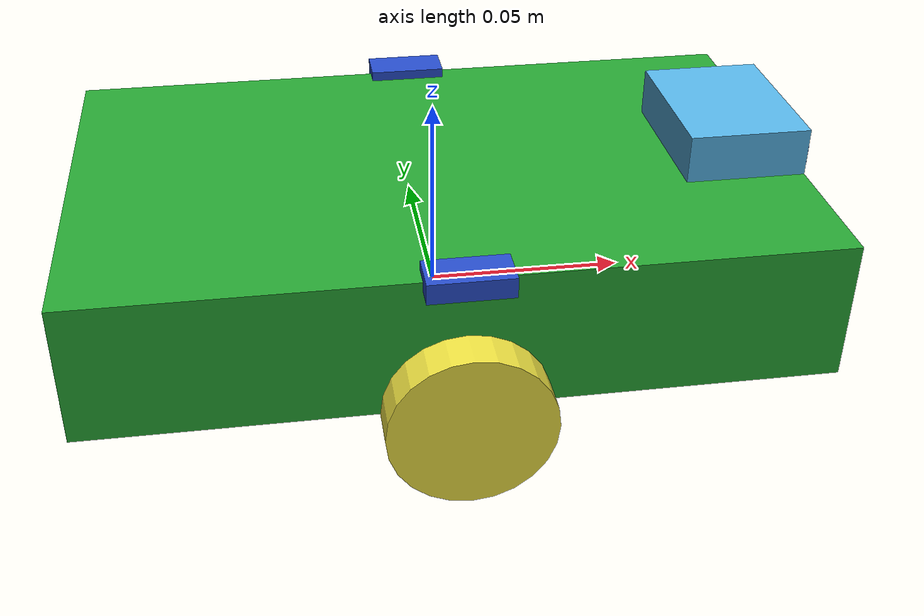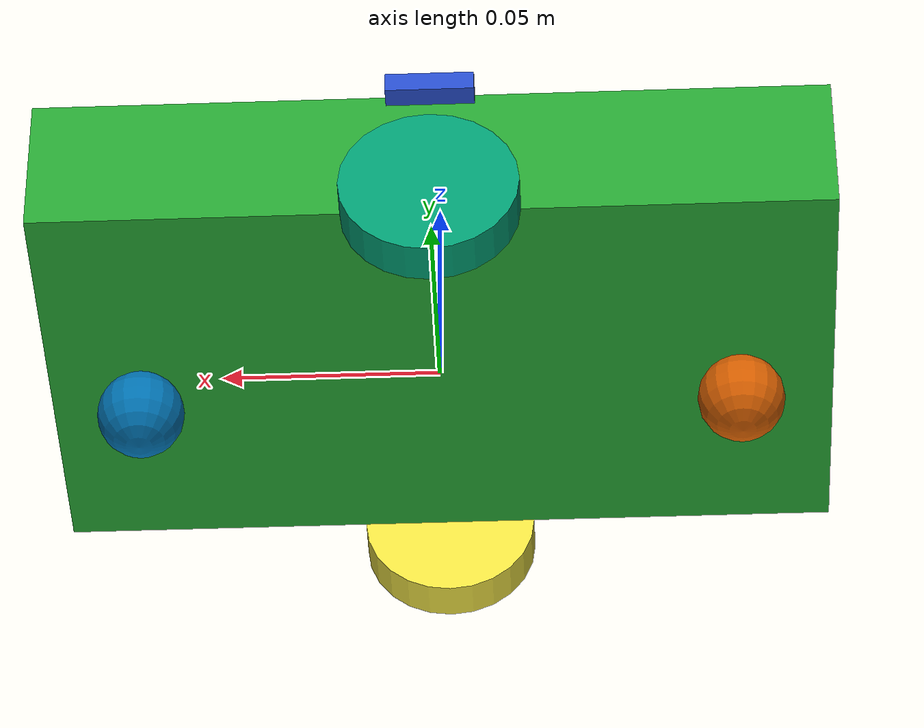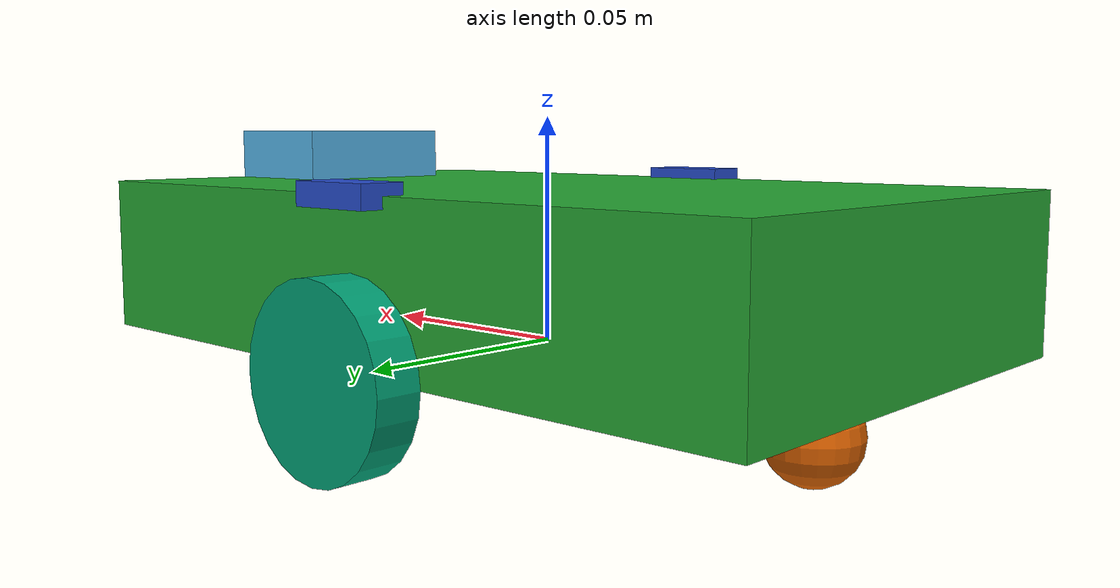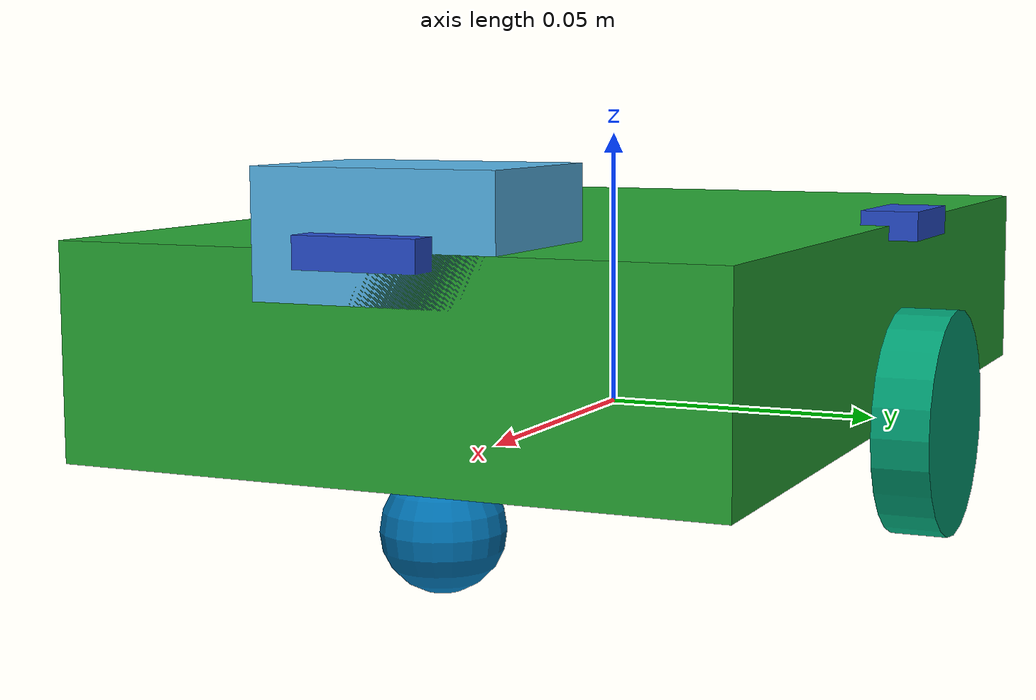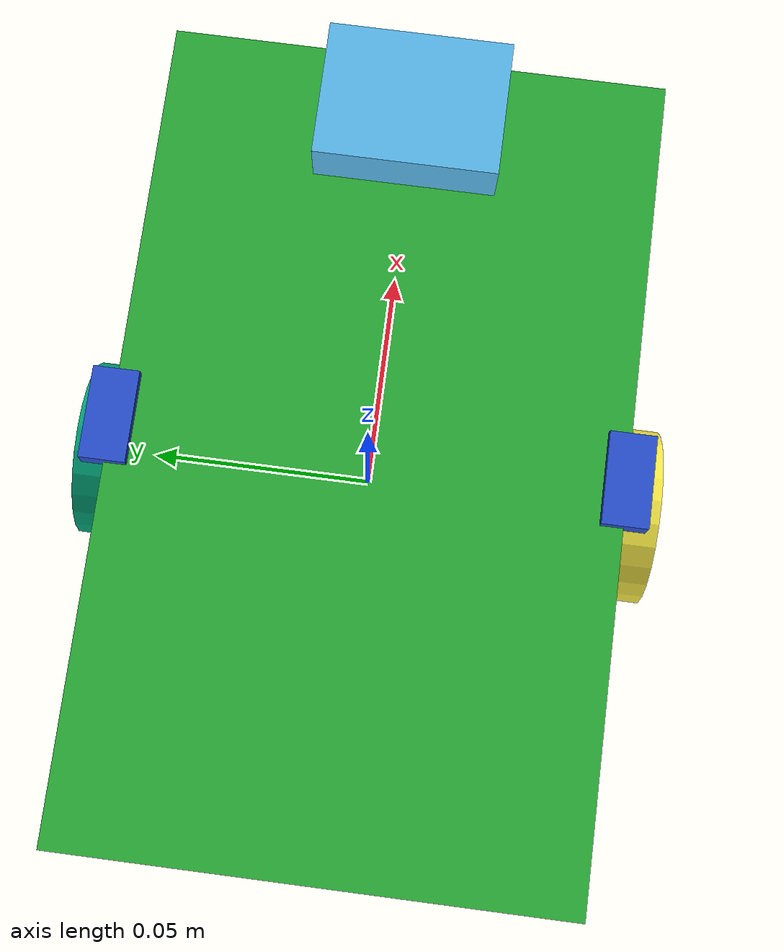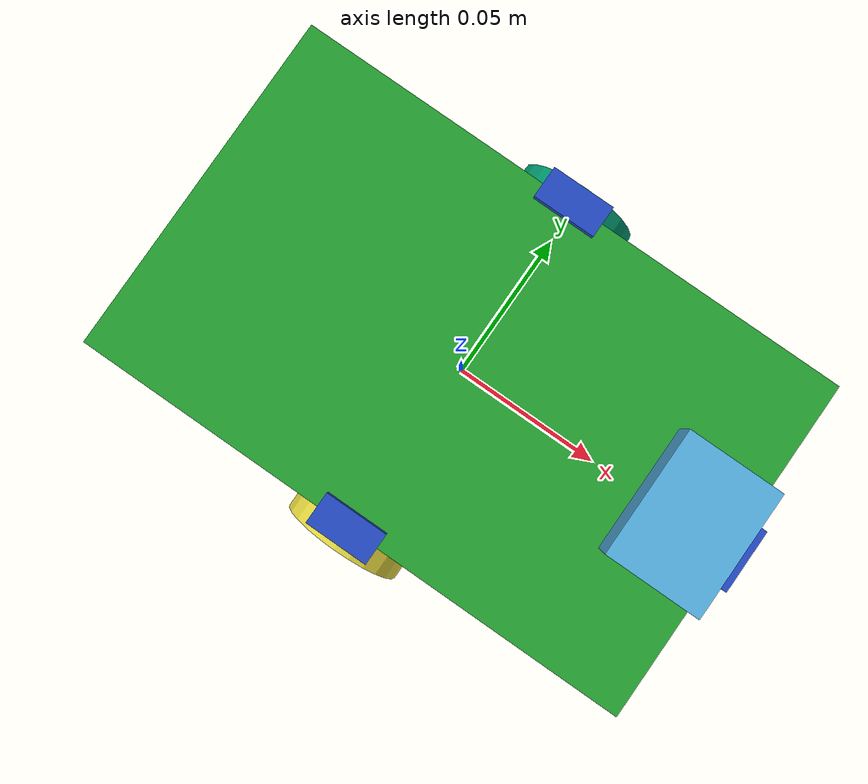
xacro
<?xml version="1.0"?>
<robot name="otonom_robot" xmlns:xacro="http://ros.org/wiki/xacro">
  <xacro:include filename="$(find otonom_robot)/urdf/otonom_robot_taban.xacro"/>
  <xacro:include filename="$(find otonom_robot)/urdf/otonom_robot_inertia.xacro"/>
  <xacro:include filename="$(find otonom_robot)/urdf/otonom_robot_tekerlek.xacro"/>
  <xacro:include filename="$(find otonom_robot)/urdf/otonom_robot_diferansiyel.xacro"/>
  <xacro:include filename="$(find otonom_robot)/urdf/otonom_robot_laser.xacro"/>
  <xacro:include filename="$(find otonom_robot)/urdf/otonom_robot_kamera.xacro"/>

  <xacro:otonom_robot_taban />
  <xacro:otonom_robot_tekerlek xyz_konum="0.0 0.060 -0.0175" rpy_konum="0 0 0 " yon="left"/>
  <xacro:otonom_robot_tekerlek xyz_konum="0.0 -0.060 -0.0175" rpy_konum="0 0 0" yon="right"/>
  <xacro:otonom_robot_sarhos_tekerlek xyz_konum="0.0685 0.0 -0.0275" rpy_konum="0 0 0" yon="front"/>
  <xacro:otonom_robot_sarhos_tekerlek xyz_konum="-0.0685 0.0 -0.0275" rpy_konum="0 0 0" yon="back"/>
  <xacro:otonom_robot_diferansiyel />
  <xacro:otonom_robot_laser name="laser_front" x="0.09" y="0.0" z="0.0175" rpy_konum="0 0 0"/>
  <xacro:otonom_robot_laser name="laser_left" x="0.0" y="0.055" z="0.0175" rpy_konum="0 0 1.5707"/>
  <xacro:otonom_robot_laser name="laser_right" x="0.0" y="-0.055" z="0.0175" rpy_konum="0 0 -1.5707"/>
  <xacro:otonom_robot_kamera />

</robot>

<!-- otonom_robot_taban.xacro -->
<robot xmlns:xacro="http://ros.org/wiki/xacro">

  <xacro:macro name="otonom_robot_taban">
    <!-- 2D referans: boş -->
    <link name="base_footprint"/>

    <!-- Fiziksel gövde -->
    <link name="base_link">
      <collision>
        <origin xyz="0 0 0" rpy="0 0 0"/>
        <geometry>
          <box size="0.18 0.11 0.035"/>
        </geometry>
      </collision>

      <visual>
        <origin xyz="0 0 0" rpy="0 0 0"/>
        <geometry>
          <box size="0.18 0.11 0.035"/>
        </geometry>
      </visual>

      <xacro:box_inertial x="0.18" y="0.11" z="0.035" mass="10.0"/>
    </link>

    <!-- base_footprint her zaman düz -->
    <joint name="base_footprint_to_base_link" type="fixed">
      <parent link="base_footprint"/>
      <child link="base_link"/>
      <!-- gövde yüksekliği: kutunun yarısı kadar -->
      <origin xyz="0 0 0.0175" rpy="0 0 0"/>
    </joint>

    <gazebo reference="base_link">
      <material>Gazebo/Green</material>
    </gazebo>
  </xacro:macro>

</robot>

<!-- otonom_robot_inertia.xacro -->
<robot
  xmlns:xacro="http://ros.org/wiki/xacro">
  <property name="M_PI" value="3.1415926535897931" />

  <!-- see https://secure.wikimedia.org/wikipedia/en/wiki/List_of_moment_of_inertia_tensors -->

  <!-- #################### versions without origin #################### -->
  <xacro:macro name="sphere_inertial" params="radius mass">
    <inertial>
      <mass value="${mass}" />
      <origin xyz="0 0 0" />
      <inertia ixx="${0.4 * mass * radius * radius}" ixy="0.0" ixz="0.0"
        iyy="${0.4 * mass * radius * radius}" iyz="0.0"
        izz="${0.4 * mass * radius * radius}" />
    </inertial>
  </xacro:macro>

  <xacro:macro name="cylinder_inertial" params="radius length mass">
    <inertial>
      <mass value="${mass}" />
      <origin xyz="0 0 0" />
      <inertia ixx="${0.0833333 * mass * (3 * radius * radius + length * length)}" ixy="0.0" ixz="0.0"
        iyy="${0.0833333 * mass * (3 * radius * radius + length * length)}" iyz="0.0"
        izz="${0.5 * mass * radius * radius}" />
    </inertial>
  </xacro:macro>

  <xacro:macro name="box_inertial" params="x y z mass">
    <inertial>
      <mass value="${mass}" />
      <origin xyz="0 0 0" />
      <inertia ixx="${0.0833333 * mass * (y*y + z*z)}" ixy="0.0" ixz="0.0"
        iyy="${0.0833333 * mass * (x*x + z*z)}" iyz="0.0"
        izz="${0.0833333 * mass * (x*x + y*y)}" />
    </inertial>
  </xacro:macro>

  <!-- #################### versions with origin #################### -->
  <xacro:macro name="sphere_inertial_with_origin" params="radius mass *origin">
    <inertial>
      <mass value="${mass}" />
      <insert_block name="origin" />
      <inertia ixx="${0.4 * mass * radius * radius}" ixy="0.0" ixz="0.0"
        iyy="${0.4 * mass * radius * radius}" iyz="0.0"
        izz="${0.4 * mass * radius * radius}" />
    </inertial>
  </xacro:macro>

  <xacro:macro name="cylinder_inertial_with_origin" params="radius length mass *origin">
    <inertial>
      <mass value="${mass}" />
      <insert_block name="origin" />
      <inertia ixx="${0.0833333 * mass * (3 * radius * radius + length * length)}" ixy="0.0" ixz="0.0"
        iyy="${0.0833333 * mass * (3 * radius * radius + length * length)}" iyz="0.0"
        izz="${0.5 * mass * radius * radius}" />
    </inertial>
  </xacro:macro>

  <xacro:macro name="box_inertial_with_origin" params="x y z mass *origin">
    <inertial>
      <mass value="${mass}" />
      <insert_block name="origin" />
      <inertia ixx="${0.0833333 * mass * (y*y + z*z)}" ixy="0.0" ixz="0.0"
        iyy="${0.0833333 * mass * (x*x + z*z)}" iyz="0.0"
        izz="${0.0833333 * mass * (x*x + y*y)}" />
    </inertial>
  </xacro:macro>

</robot>

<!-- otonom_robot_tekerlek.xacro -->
<robot xmlns:xacro="http://www.ros.org/wiki/xacro">

  <xacro:macro name="otonom_robot_tekerlek" params="xyz_konum rpy_konum yon">

    <link name="wheel_${yon}_link">
      <collision>
        <origin xyz="0 0 0" rpy="1.570796 0 0"/>
        <geometry>
          <cylinder radius="0.02" length="0.01"/>
        </geometry>
      </collision>

      <visual>
        <origin xyz="0 0 0" rpy="1.570796 0 0"/>
        <geometry>
          <cylinder radius="0.02" length="0.01"/>
        </geometry>
      </visual>

      <!-- Bu macro başka dosyada tanımlı olmalı -->
      <xacro:cylinder_inertial radius="0.02" length="0.01" mass="0.3"/>
    </link>

    <joint name="wheel_${yon}_base" type="continuous">
      <origin xyz="${xyz_konum}" rpy="${rpy_konum}"/>
      <parent link="base_link"/>
      <child link="wheel_${yon}_link"/>
      <axis xyz="0 1 0"/>
    </joint>
     <gazebo reference="wheel_${yon}_link">
      <material value="Gazebo/Black"/>
      <!-- tahrikli teker sürtünmesi -->
      <mu1>0.8</mu1>
      <mu2>0.8</mu2>
      <kp>100000</kp>
      <kd>100</kd>
    </gazebo>

  </xacro:macro>

   <xacro:macro name="otonom_robot_sarhos_tekerlek" params="xyz_konum rpy_konum yon">

    <link name="caster_wheel_${yon}_link">
      <collision>
        <origin xyz="0 0 0" rpy="0 0 0"/>
        <geometry>
          <sphere radius="0.01"/>
        </geometry>
      </collision>

      <visual>
        <origin xyz="0 0 0" rpy="0 0 0"/>
        <geometry>
          <sphere radius="0.01"/>
        </geometry>
      </visual>

      <!-- Bu macro başka dosyada tanımlı olmalı -->
      <xacro:sphere_inertial radius="0.01" mass="0.03"/>
    </link>

    <joint name="caster_wheel_${yon}_base" type="fixed">
      <origin xyz="${xyz_konum}" rpy="${rpy_konum}"/>
      <parent link="base_link"/>
      <child link="caster_wheel_${yon}_link"/>

    </joint>

    <gazebo reference="caster_wheel_${yon}_link">
      <material value="Gazebo/White"/>
      <!-- caster sürtünmesi düşük -->
      <mu1>0.05</mu1>
      <mu2>0.05</mu2>
      <kp>100000</kp>
      <kd>100</kd>
    </gazebo>

  </xacro:macro>

</robot>

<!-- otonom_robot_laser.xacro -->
<robot xmlns:xacro="http://ros.org/wiki/xacro">

  <xacro:macro name="otonom_robot_laser" params="name x y z rpy_konum">
    <link name="${name}_link">
      <collision>
        <origin xyz="0 0 0" rpy="0 0 0"/>
        <geometry>
          <box size="0.01 0.02 0.005"/>
        </geometry>
      </collision>

      <visual>
        <origin xyz="0 0 0" rpy="0 0 0"/>
        <geometry>
          <box size="0.01 0.02 0.005"/>
        </geometry>
      </visual>

      <xacro:box_inertial x="0.01" y="0.02" z="0.005" mass="0.02"/>
    </link>

    <joint name="base_to_${name}" type="fixed">
      <origin xyz="${x} ${y} ${z}" rpy="${rpy_konum}"/>
      <parent link="base_link"/>
      <child link="${name}_link"/>
    </joint>

    <gazebo reference="${name}_link">
      <material>Gazebo/Blue</material>

      <!-- GPU yerine klasik ray: daha stabil -->
      <sensor type="ray" name="${name}_sensor">
        <pose>0 0 0 0 0 0</pose>
        <visualize>true</visualize>
        <update_rate>40</update_rate>

        <ray>
          <scan>
            <horizontal>
              <samples>720</samples>
              <resolution>1</resolution>
              <min_angle>-0.5</min_angle>
              <max_angle>0.5</max_angle>
            </horizontal>
          </scan>

          <range>
            <min>0.10</min>
            <max>30.0</max>
            <resolution>0.01</resolution>
          </range>

          <noise>
            <type>gaussian</type>
            <mean>0.0</mean>
            <stddev>0.01</stddev>
          </noise>
        </ray>

        <!-- Klasik laser plugin -->
        <plugin name="${name}_plugin" filename="libgazebo_ros_laser.so">
          <topicName>/${name}/scan</topicName>
          <frameName>${name}_link</frameName>
        </plugin>

      </sensor>
    </gazebo>

  </xacro:macro>

</robot>

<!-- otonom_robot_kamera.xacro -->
<robot xmlns:xacro="http://ros.org/wiki/xacro">
  <xacro:macro name="otonom_robot_kamera" params="">

    <!-- camera_link TANIMLA -->
    <link name="camera_link">
      <collision>
        <origin xyz="0 0 0" rpy="0 0 0"/>
        <geometry>
          <box size="0.03 0.04 0.02"/>
        </geometry>
      </collision>

      <visual>
        <origin xyz="0 0 0" rpy="0 0 0"/>
        <geometry>
          <box size="0.03 0.04 0.02"/>
        </geometry>
      </visual>

      <xacro:box_inertial x="0.03" y="0.04" z="0.02" mass="0.05"/>
    </link>

    <!-- base_footprint'e BAĞLA -->
    <joint name="base_to_camera" type="fixed">
      <origin xyz="0.075 0.0 0.0195" rpy="0 0 0"/>
      <parent link="base_link"/>
      <child link="camera_link"/>
    </joint>

    <gazebo reference="camera_link">
      <material value="Gazebo/Red"/>
      <sensor name="camera_link_camera" type="depth">
        <update_rate>20</update_rate>
        <camera>
          <horizontal_fov>1.047198</horizontal_fov>
          <image>
            <width>640</width>
            <height>480</height>
            <format>R8G8B8</format>
          </image>
          <clip>
            <near>0.05</near>
            <far>3</far>
          </clip>
        </camera>

        <plugin name="camera_link_controller" filename="libgazebo_ros_openni_kinect.so">
          <alwaysOn>true</alwaysOn>
          <updateRate>1.0</updateRate>
          <imageTopicName>/camera/rgb/image_raw</imageTopicName>
          <cameraInfoTopicName>/camera/rgb/camera_info</cameraInfoTopicName>
          <depthImageTopicName>/camera/depth/image_raw</depthImageTopicName>
          <depthImageInfoTopicName>/camera/depth/camera_info</depthImageInfoTopicName>
          <pointCloudTopicName>/camera/depth/points</pointCloudTopicName>
          <frameName>camera_link</frameName>
          <pointCloudCutoff>0.5</pointCloudCutoff>
          <pointCloudCutoffMax>3.0</pointCloudCutoffMax>
        </plugin>
      </sensor>
    </gazebo>

  </xacro:macro>
</robot>
